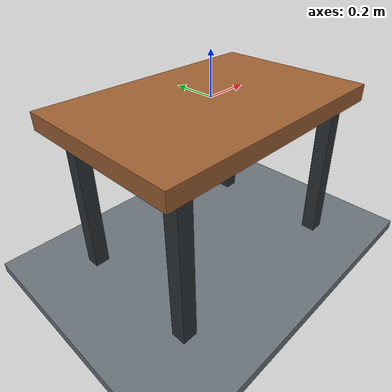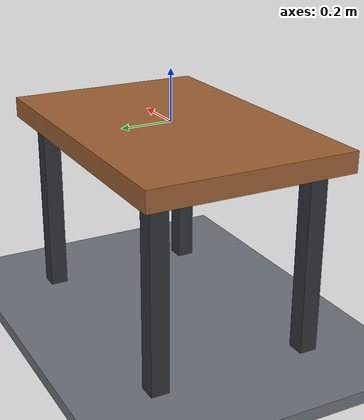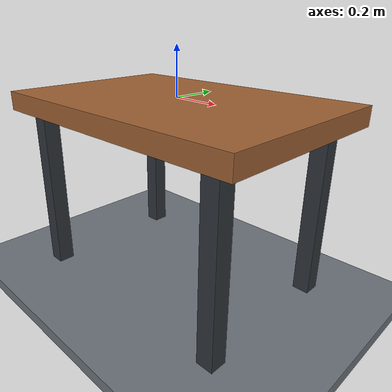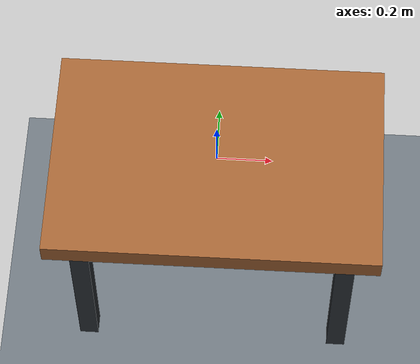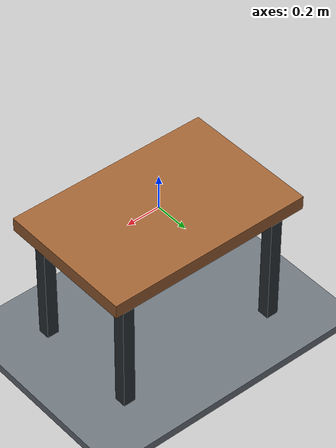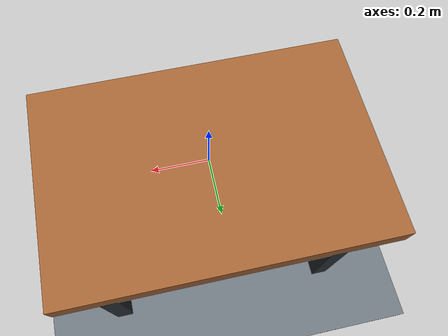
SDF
<?xml version="1.0"?>
<sdf version="1.6">
  <world name="elevator_button_lab">
    <gravity>0 0 -9.81</gravity>

    <physics name="default_physics" type="ode">
      <real_time_update_rate>1000</real_time_update_rate>
      <max_step_size>0.001</max_step_size>
      <real_time_factor>1.0</real_time_factor>
    </physics>

    <!-- Expose model-state topics and pose services for synthetic data. -->
    <plugin name="gazebo_ros_state" filename="libgazebo_ros_state.so">
      <ros>
        <namespace>/</namespace>
      </ros>
      <update_rate>30.0</update_rate>
    </plugin>

    <scene>
      <ambient>0.45 0.45 0.45 1</ambient>
      <background>0.75 0.82 0.90 1</background>
      <shadows>true</shadows>
    </scene>

    <!-- Convenient overview when the optional Gazebo client is enabled. -->
    <gui fullscreen="0">
      <camera name="overview_camera">
        <pose>1.40 -1.40 1.10 0 0.35 2.35</pose>
        <view_controller>orbit</view_controller>
      </camera>
    </gui>

    <light name="ceiling_light" type="directional">
      <cast_shadows>true</cast_shadows>
      <pose>0 0 3 0 0 0</pose>
      <diffuse>0.95 0.95 0.95 1</diffuse>
      <specular>0.25 0.25 0.25 1</specular>
      <direction>-0.3 0.2 -1.0</direction>
    </light>

    <!-- The floor is 0.80 m below the robot base. -->
    <model name="floor">
      <static>true</static>
      <pose>0 0 -0.825 0 0 0</pose>
      <link name="floor_link">
        <collision name="floor_collision">
          <geometry><box><size>6 6 0.05</size></box></geometry>
        </collision>
        <visual name="floor_visual">
          <geometry><box><size>6 6 0.05</size></box></geometry>
          <material>
            <ambient>0.32 0.35 0.38 1</ambient>
            <diffuse>0.42 0.45 0.48 1</diffuse>
          </material>
        </visual>
      </link>
    </model>

    <!-- Table top surface is exactly z=0, matching the robot base frame. -->
    <model name="work_table">
      <static>true</static>
      <link name="table_link">
        <collision name="top_collision">
          <pose>0 0 -0.04 0 0 0</pose>
          <geometry><box><size>1.20 0.80 0.08</size></box></geometry>
        </collision>
        <visual name="top_visual">
          <pose>0 0 -0.04 0 0 0</pose>
          <geometry><box><size>1.20 0.80 0.08</size></box></geometry>
          <material>
            <ambient>0.43 0.25 0.12 1</ambient>
            <diffuse>0.62 0.38 0.20 1</diffuse>
          </material>
        </visual>

        <collision name="front_left_leg_collision">
          <pose>0.48 0.31 -0.42 0 0 0</pose>
          <geometry><box><size>0.07 0.07 0.76</size></box></geometry>
        </collision>
        <visual name="front_left_leg_visual">
          <pose>0.48 0.31 -0.42 0 0 0</pose>
          <geometry><box><size>0.07 0.07 0.76</size></box></geometry>
          <material><diffuse>0.18 0.20 0.22 1</diffuse></material>
        </visual>

        <collision name="front_right_leg_collision">
          <pose>0.48 -0.31 -0.42 0 0 0</pose>
          <geometry><box><size>0.07 0.07 0.76</size></box></geometry>
        </collision>
        <visual name="front_right_leg_visual">
          <pose>0.48 -0.31 -0.42 0 0 0</pose>
          <geometry><box><size>0.07 0.07 0.76</size></box></geometry>
          <material><diffuse>0.18 0.20 0.22 1</diffuse></material>
        </visual>

        <collision name="rear_left_leg_collision">
          <pose>-0.48 0.31 -0.42 0 0 0</pose>
          <geometry><box><size>0.07 0.07 0.76</size></box></geometry>
        </collision>
        <visual name="rear_left_leg_visual">
          <pose>-0.48 0.31 -0.42 0 0 0</pose>
          <geometry><box><size>0.07 0.07 0.76</size></box></geometry>
          <material><diffuse>0.18 0.20 0.22 1</diffuse></material>
        </visual>

        <collision name="rear_right_leg_collision">
          <pose>-0.48 -0.31 -0.42 0 0 0</pose>
          <geometry><box><size>0.07 0.07 0.76</size></box></geometry>
        </collision>
        <visual name="rear_right_leg_visual">
          <pose>-0.48 -0.31 -0.42 0 0 0</pose>
          <geometry><box><size>0.07 0.07 0.76</size></box></geometry>
          <material><diffuse>0.18 0.20 0.22 1</diffuse></material>
        </visual>
      </link>
    </model>

  </world>
</sdf>
